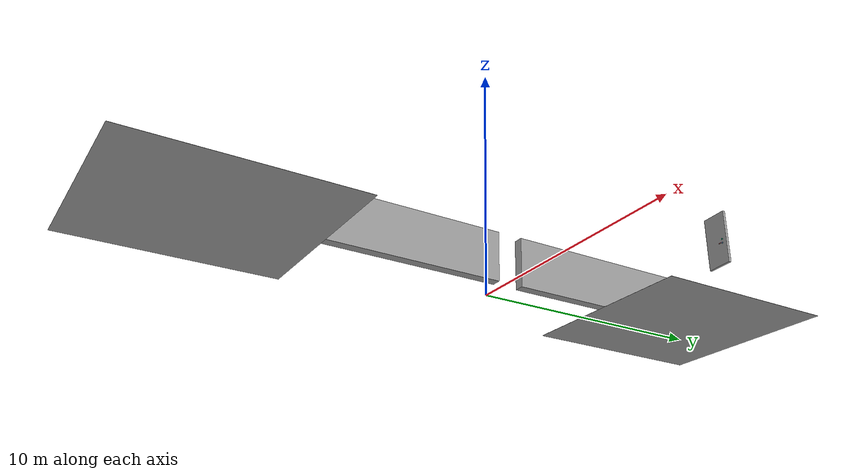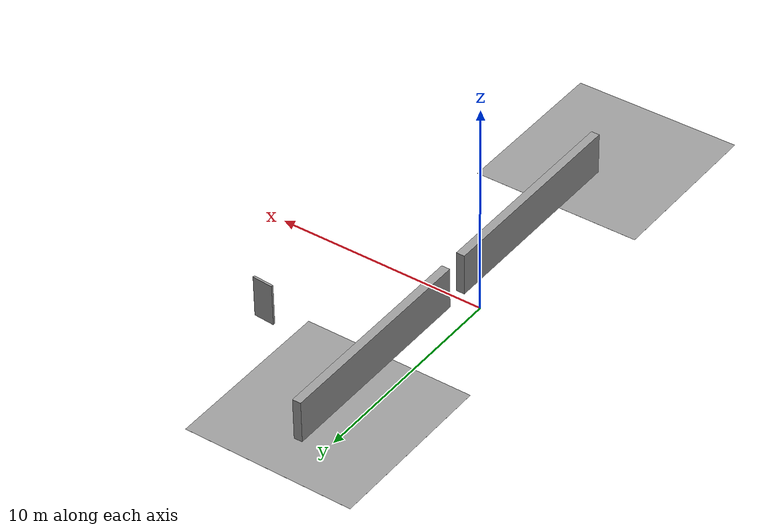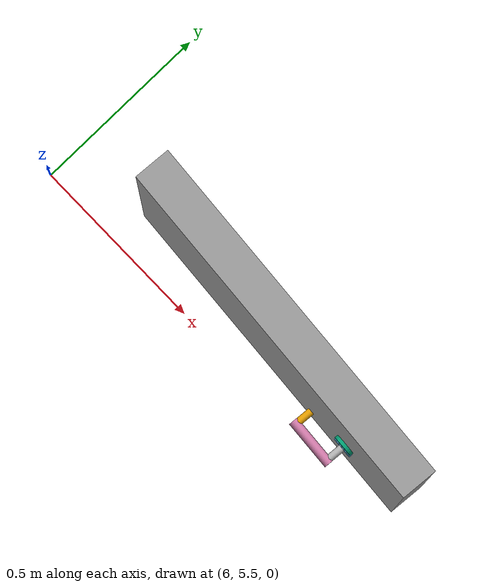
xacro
<?xml version="1.0"?>
<robot name="door"
       xmlns:xi="http://www.w3.org/2001/XInclude"
       xmlns:gazebo="http://playerstage.sourceforge.net/gazebo/xmlschema/#gz"
       xmlns:model="http://playerstage.sourceforge.net/gazebo/xmlschema/#model"
       xmlns:sensor="http://playerstage.sourceforge.net/gazebo/xmlschema/#sensor"
       xmlns:body="http://playerstage.sourceforge.net/gazebo/xmlschema/#body"
       xmlns:geom="http://playerstage.sourceforge.net/gazebo/xmlschema/#geom"
       xmlns:joint="http://playerstage.sourceforge.net/gazebo/xmlschema/#joint"
       xmlns:interface="http://playerstage.sourceforge.net/gazebo/xmlschema/#interface"
       xmlns:rendering="http://playerstage.sourceforge.net/gazebo/xmlschema/#rendering"
       xmlns:renderable="http://playerstage.sourceforge.net/gazebo/xmlschema/#renderable"
       xmlns:controller="http://playerstage.sourceforge.net/gazebo/xmlschema/#controller"
       xmlns:physics="http://playerstage.sourceforge.net/gazebo/xmlschema/#physics">

  <property name="M_PI" value="3.1415926535897931" />
  <property name="wall_x_loc" value="1.25" />
  <property name="handle_height" value="0.85" />
  <property name="handle_length" value="0.14" />

  <link name="world" />
  <joint name="floor1_joint" type="planar">
    <parent link="world" />
    <origin xyz="${wall_x_loc} 0.65 ${0.0}" rpy="0 0 0" />
    <child link="floor1_link" />
  </joint>
  <!-- link blocks -->
  <link name="floor1_link">
    <inertial>
      <mass value="100" />
      <com xyz="0 0 0.0" />
      <inertia ixx="10" ixy="0"  ixz="0"
               iyy="10" iyz="0"
               izz="10" />
    </inertial>
    <visual>
      <origin xyz="0 8 0.001" rpy="0 0 0" />
      <geometry name="floor1_visual_geom">
        <box size="8 8 0.002" />
      </geometry>
    </visual>
    <collision>
      <origin xyz="0 8 0.001" rpy="0.0 0.0 0.0" />
      <geometry name="floor1_collision_geom">
        <box size="8 8 0.002" />
      </geometry>
    </collision>
  </link>

  <gazebo reference="floor1_link">
    <material>PR2/Grey</material>
    <mu1>50.0</mu1>
    <mu2>50.0</mu2>
    <kp>1000000000.0</kp>
    <kd>1.0</kd>
  </gazebo>

  <joint name="floor2_joint" type="fixed" >
    <parent link="floor1_link" />
    <origin xyz="0 -8 0" rpy="0 0 0" />
    <child link="floor2_link" />
  </joint>
  <link name="floor2_link">
    <inertial>
      <mass value="100" />
      <com xyz="0 0 0.0" />
      <inertia ixx="10" ixy="0"  ixz="0"
               iyy="10" iyz="0"
               izz="10" />
    </inertial>
    <visual>
      <origin xyz="0 -4 0.000" rpy="0 0 0" />
      <geometry name="floor2_visual_geom">
        <box size="8 8 0.002" />
      </geometry>
    </visual>
    <collision>
      <origin xyz="0 -4 0.000" rpy="0.0 0.0 0.0" />
      <geometry name="floor2_collision_geom">
        <box size="8 8 0.002" />
      </geometry>
    </collision>
  </link>
  <gazebo reference="floor2_link">
    <material>PR2/Grey</material>
    <mu1>50.0</mu1>
    <mu2>50.0</mu2>
    <kp>100000000.0</kp>
    <kd>1.0</kd>
  </gazebo>

  <joint name="wall1_joint" type="fixed" >
    <parent link="floor1_link" />
    <origin xyz="0 0.0 0" rpy="0 0 0" />
    <child link="wall1_link" />
  </joint>
  <link name="wall1_link">
    <inertial>
      <mass value="100" />
      <com xyz="0 5 1" />
      <inertia ixx="10" ixy="0"  ixz="0"
               iyy="10" iyz="0"
               izz="10" />
    </inertial>
    <visual>
      <origin xyz="0 5 1" rpy="0 0 0" />
      <geometry name="wall1_visual_geom">
        <box size="0.4 10 2" />
      </geometry>
    </visual>
    <collision>
      <origin xyz="0 5 1" rpy="0.0 0.0 0.0" />
      <geometry name="wall1_collision_geom">
        <box size="0.4 10 2" />
      </geometry>
    </collision>
  </link>
  <gazebo reference="wall1_link">
    <material>PR2/Grey2</material>
    <laserRetro>1000</laserRetro>
    <selfCollide>false</selfCollide>
    <turnGravityOff>true</turnGravityOff>
  </gazebo>

  <joint name="wall2_joint" type="fixed" >
    <parent link="floor1_link" />
    <origin xyz="0 -1.02 0.0" rpy="0 0 0" />
    <child link="wall2_link" />
  </joint>
  <link name="wall2_link">
    <inertial>
      <mass value="100" />
      <com xyz="0 -5 1" />
      <inertia ixx="10" ixy="0"  ixz="0"
               iyy="10" iyz="0"
               izz="10" />
    </inertial>
    <visual>
      <origin xyz="0 -5 1" rpy="0 0 0" />
      <geometry name="wall2_visual_geom">
        <box size="0.4 10 2" />
      </geometry>
    </visual>
    <collision>
      <origin xyz="0 -5 1" rpy="0 0 0" />
      <geometry name="wall2_collision_geom">
        <box size="0.4 10 2" />
      </geometry>
    </collision>
  </link>
  <gazebo reference="wall2_link">
    <material>PR2/Grey2</material>
    <laserRetro>1500</laserRetro>
    <selfCollide>false</selfCollide>
    <turnGravityOff>true</turnGravityOff>
  </gazebo>

  <gazebo reference="door_link">
    <latchJoint>handle_joint</latchJoint>
    <latchAngle>-1.57</latchAngle>
    <doorClosedAngle>0.0</doorClosedAngle>
    <latchKp>200.0</latchKp>
    <latchKd>0.0</latchKd>
    <latchFMax>1000.0</latchFMax>
  </gazebo>

  <joint name="door_joint" type="revolute" >
    <origin xyz="5 5 0.05" rpy="0 0 1.5" />
    <axis xyz="0 0 1" />
    <limit lower="${-M_PI}" upper="${M_PI}" effort="1000" velocity="10" />
    <safety_controller soft_lower_limit="${-M_PI+0.1}" soft_upper_limit="${M_PI-0.1}"
           k_position="100.0" k_velocity="10.0" />
    <dynamics damping="100" friction="0.0" />

    <parent link="wall1_link" />
    <child link="door_link" />
  </joint>
  <link name="door_link">
    <inertial >
      <mass value="30" />
      <com xyz="0.0 -0.5 1.0" />
      <inertia  ixx="1.0" ixy="0.0"  ixz="0.0"
                iyy="1.0" iyz="0.0"
                izz="3.0" />
    </inertial>
    <visual >
      <origin xyz="0.0 -0.5 1.0" rpy="0 0 ${M_PI}" />
      <geometry name="sholder_roll_mesh_file">
        <box size="0.1 1.0 2.0" />
      </geometry>
    </visual>
    <collision >
      <origin xyz="0.0 -0.5 1.0" rpy="0 0 ${M_PI}" />
      <geometry name="door_collision_geom">
        <box size="0.1 1.0 2.0" />
      </geometry>
    </collision>
  </link>
  <gazebo reference="door_link">
    <material>PR2/Grey</material>
    <laserRetro>2000</laserRetro>
    <turnGravityOff>true</turnGravityOff>
    <selfCollide>false</selfCollide>
    <dampingFactor>0.01</dampingFactor>
  </gazebo>

  <joint name="handle_joint" type="revolute" >
    <axis xyz="1 0 0" />
    <origin xyz="-0.11 -0.8 ${handle_height-0.05}" rpy="${0*M_PI/2.0} 0 0" />
    <limit lower="${-M_PI/4}" upper="${M_PI/4}" effort="1000" velocity="10" />
    <safety_controller soft_lower_limit="${-M_PI/4+0.01}" soft_upper_limit="${M_PI/4-0.1}"
           k_position="100.0" k_velocity="10.0" />
    <dynamics damping="10" friction="0.0" />
    <parent link="door_link" />
    <child link="handle_link" />
  </joint>
  <link name="handle_link">
    <inertial >
      <mass value="0.3" />
      <com xyz="0.0 ${handle_length/2-0.01} 0.0" />
      <inertia  ixx="0.01"  ixy="0.0"  ixz="0.0"
                iyy="0.01" iyz="0.0"
                izz="0.01" />
    </inertial>
    <visual >
      <origin xyz="0.0 ${handle_length/2-0.01} 0.0" rpy="${1*M_PI/2} 0 0" />
      <geometry name="sholder_roll_mesh_file">
        <cylinder radius="0.013" length="${handle_length}" />
      </geometry>
    </visual>
    <collision >
      <origin xyz="0.0 ${handle_length/2-0.01} 0.0" rpy="${1*M_PI/2} 0 0" />
      <geometry name="handle_collision_geom">
        <cylinder radius="0.013" length="${handle_length}" />
      </geometry>
    </collision>
  </link>
  <gazebo reference="handle_link">
    <material>PR2/Handle</material>
    <laserRetro>3900.0</laserRetro>
    <mu1>50.0</mu1>
    <mu2>50.0</mu2>
    <kp>100000000.0</kp>
    <kd>1.0</kd>
    <turnGravityOff>true</turnGravityOff>
    <selfCollide>false</selfCollide>
    <dampingFactor>0.05</dampingFactor>
  </gazebo>

  <joint name="handle1_joint" type="fixed">
    <parent link="handle_link" />
    <origin xyz="0.0 0.0 0" rpy="0 0 0" />
    <child link="handle1_link" />
  </joint>
  <link name="handle1_link">
    <inertial >
      <mass value="0.1" />
      <com xyz="0.0 0.0 0.0" />
      <inertia  ixx="0.01"  ixy="0.0"  ixz="0.0"
                iyy="0.01" iyz="0.0"
                izz="0.001" />
    </inertial>
    <visual >
      <origin xyz="0.025 0.0 0.0" rpy="0 ${1*M_PI/2.0} 0" />
      <geometry name="sholder_roll_mesh_file">
        <cylinder radius="0.01" length="0.05" />
      </geometry>
    </visual>
    <collision >
      <origin xyz="0.025 0.0 0.0" rpy="0 ${1*M_PI/2.0} 0" />
      <geometry name="handle1_collision_geom">
        <cylinder radius="0.01" length="0.05" />
      </geometry>
    </collision>
  </link>
  <gazebo reference="handle1_link">
    <material>PR2/Handle</material>
    <laserRetro>3900.0</laserRetro>
    <turnGravityOff>true</turnGravityOff>
    <selfCollide>false</selfCollide>
  </gazebo>

  <joint name="handle2_joint" type="fixed">
    <parent link="handle_link" />
    <origin xyz="0.0 0.12 0" rpy="0 0 0" />
    <child link="handle2_link" />
  </joint>
  <link name="handle2_link">
    <inertial >
      <mass value="0.1" />
      <com xyz="0.0 0.0 0.0" />
      <inertia  ixx="0.01"  ixy="0.0"  ixz="0.0"
                iyy="0.01" iyz="0.0"
                izz="0.001" />
    </inertial>
    <visual >
      <origin xyz="0.025 0.0 0.0" rpy="0 ${1*M_PI/2.0} 0" />
      <geometry name="sholder_roll_mesh_file">
        <cylinder radius="0.01" length="0.05" />
      </geometry>
    </visual>
    <collision >
      <origin xyz="0.025 0.0 0.0" rpy="0 ${1*M_PI/2.0} 0" />
      <geometry name="handle2_collision_geom">
        <cylinder radius="0.01" length="0.05" />
      </geometry>
    </collision>
  </link>
  <gazebo reference="handle2_link">
    <material>PR2/Shiny</material>
    <laserRetro>3900.0</laserRetro>
    <turnGravityOff>true</turnGravityOff>
    <selfCollide>false</selfCollide>
  </gazebo>

  <joint name="handle3_joint" type="fixed">
    <parent link="handle_link" />
    <origin xyz="0.0 0.0 0" rpy="0 0 0" />
    <child link="handle3_link" />
  </joint>
  <link name="handle3_link">
    <inertial >
      <mass value="0.1" />
      <com xyz="0.0 0.0 0.0" />
      <inertia  ixx="0.01"  ixy="0.0"  ixz="0.0"
                iyy="0.01" iyz="0.0"
                izz="0.001" />
    </inertial>
    <visual >
      <origin xyz="0.06 0.0 0.0" rpy="0 ${1*M_PI/2.0} 0" />
      <geometry name="sholder_roll_mesh_file">
        <cylinder radius="0.03" length="0.02" />
      </geometry>
    </visual>
    <collision >
      <origin xyz="0.06 0.0 0.0" rpy="0 ${1*M_PI/2.0} 0" />
      <geometry name="handle3_collision_geom">
        <cylinder radius="0.03" length="0.02" />
      </geometry>
    </collision>
  </link>
  <gazebo reference="handle3_link">
    <material>PR2/Shiny</material>
    <laserRetro>3900.0</laserRetro>
    <turnGravityOff>true</turnGravityOff>
    <selfCollide>false</selfCollide>
  </gazebo>

  <joint name="keyhole_joint" type="fixed">
    <parent link="door_link" />
    <origin xyz="-0.05 -0.8 ${handle_height-0.05+0.15}" rpy="${0*M_PI/2.0} 0 0" />
    <child link="keyhole_link" />
  </joint>
  <link name="keyhole_link">
    <inertial >
      <mass value="0.1" />
      <com xyz="0.0 0.0 0.0" />
      <inertia  ixx="0.01"  ixy="0.0"  ixz="0.0"
                iyy="0.01" iyz="0.0"
                izz="0.001" />
    </inertial>
    <visual >
      <origin xyz="0.0 0.0 0.0" rpy="0 ${1*M_PI/2.0} 0" />
      <geometry name="sholder_roll_mesh_file">
        <cylinder radius="0.03" length="0.02" />
      </geometry>
    </visual>
    <collision >
      <origin xyz="0.0 0.0 0.0" rpy="0 ${1*M_PI/2.0} 0" />
      <geometry name="keyhole_collision_geom">
        <cylinder radius="0.03" length="0.02" />
      </geometry>
    </collision>
  </link>
  <gazebo reference="keyhole_link">
    <material>PR2/Shiny</material>
    <laserRetro>3900.0</laserRetro>
    <turnGravityOff>true</turnGravityOff>
    <selfCollide>false</selfCollide>
  </gazebo>

  <gazebo>
    <!-- gazebo_ros_p3d for position groundtruth -->
    <controller:gazebo_ros_p3d name="p3d_door_controller" plugin="libgazebo_ros_p3d.so">
        <alwaysOn>true</alwaysOn>
        <updateRate>100.0</updateRate>
        <bodyName>door_link</bodyName>
        <topicName>door_pose</topicName>
        <frameName>/map</frameName>
        <interface:position name="p3d_door_position"/>
    </controller:gazebo_ros_p3d>

    <controller:gazebo_ros_controller_manager name="door_controller_manager" plugin="libgazebo_ros_controller_manager.so">
      <alwaysOn>true</alwaysOn>
      <updateRate>1000.0</updateRate>
      <robotParam>door_description</robotParam>
      <interface:audio name="gazebo_ros_controller_manager_dummy_iface" />
    </controller:gazebo_ros_controller_manager>
  </gazebo>

  <!-- transmission mechanism controls -->
  <transmission type="pr2_mechanism_model/SimpleTransmission" name="door_trans">
    <actuator name="door_motor" />
    <joint name="door_joint" />
    <mechanicalReduction>100</mechanicalReduction>
  </transmission>

  <transmission type="pr2_mechanism_model/SimpleTransmission" name="handle_trans">
    <actuator name="handle_motor" />
    <joint name="handle_joint" />
    <mechanicalReduction>100</mechanicalReduction>
  </transmission>

</robot>
